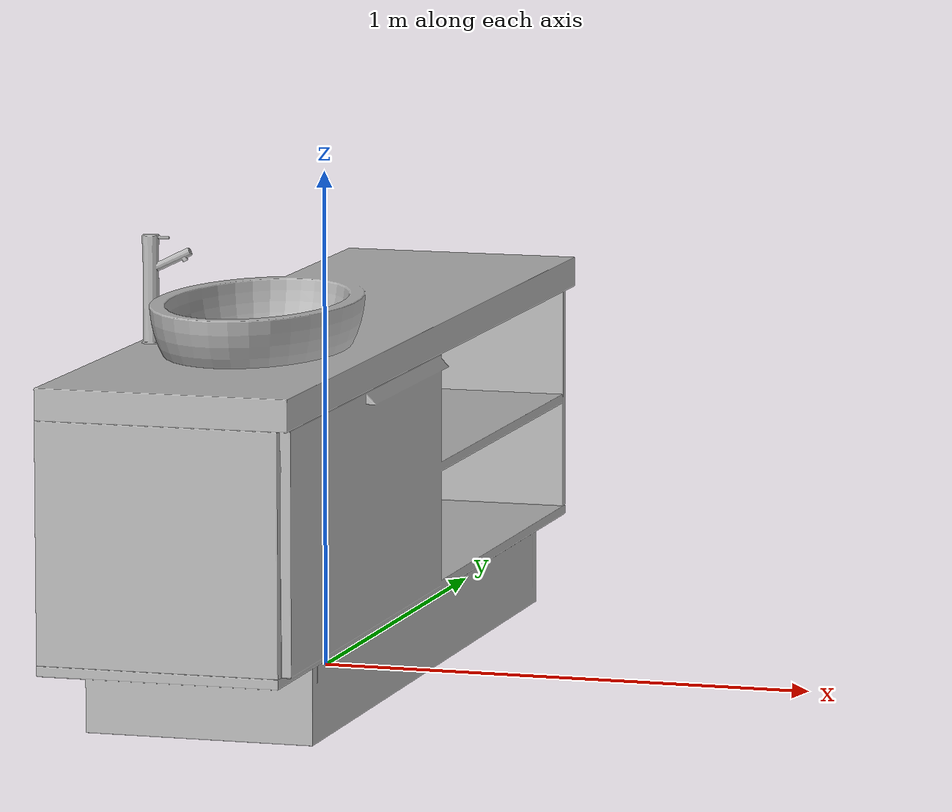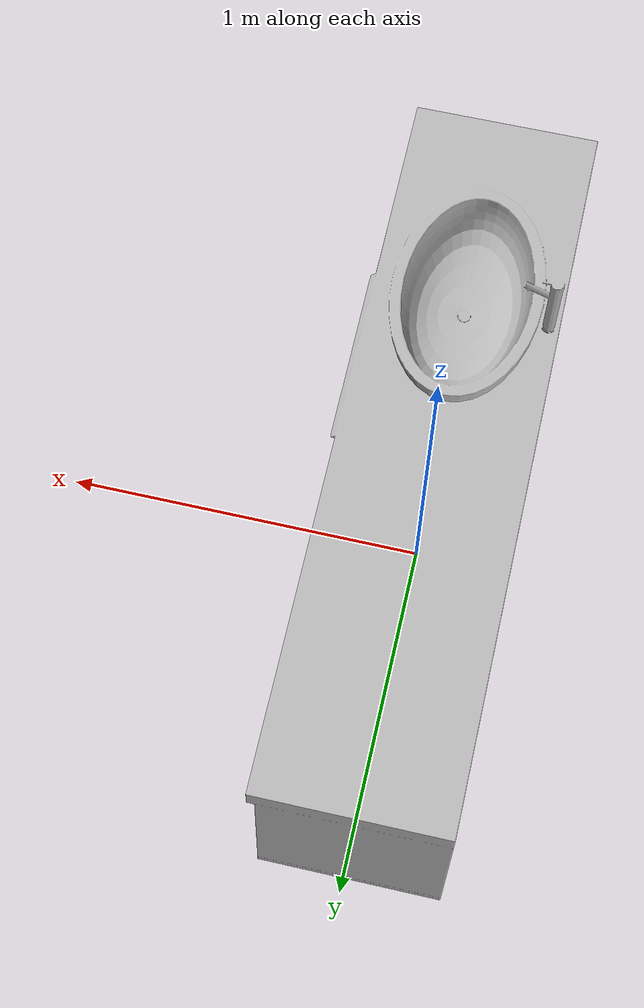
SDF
<?xml version='1.0'?>
<sdf version='1.4'>
  <model name='447'>
    <pose>0 0 0 0 0 0</pose>
    <static>true</static>
    <link name='link'>
      <collision name='collision'>
        <pose>0 0 0 0 0 0</pose>
        <geometry>
          <box>
            <size>0.520299 2 2</size>
          </box>
        </geometry>
      </collision>
      <visual name='visual'>
        <pose>0 0 0 0 0 0</pose>
        <geometry>
          <mesh><uri>model://447/447.dae</uri></mesh>
        </geometry>
      </visual>
    </link>
  </model>
</sdf>
